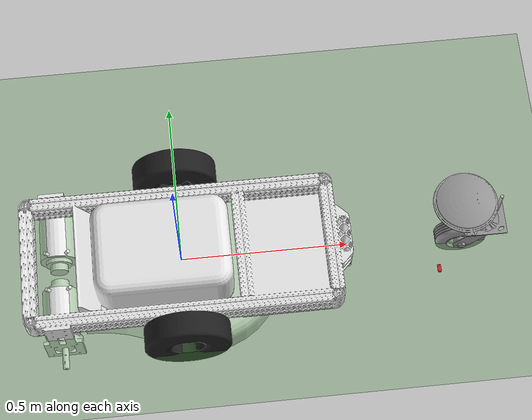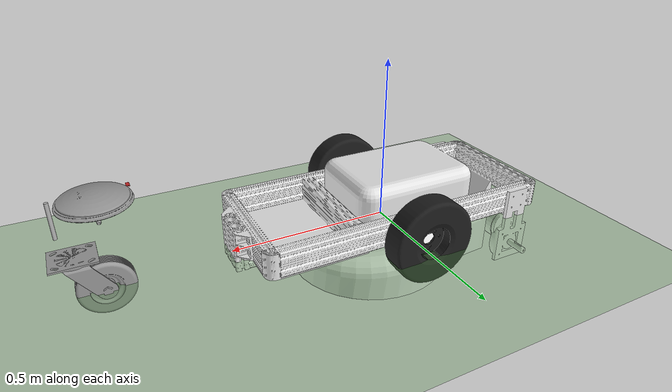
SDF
<?xml version="1.0" ?>
<sdf version="1.5">
  <world name="default">
    <!-- A global light source -->
    <include>
      <uri>model://sun</uri>
    </include>
    <!-- A ground plane -->
    <include>
      <uri>model://grass</uri>
    </include>

    <model name="my_grudsby">
      <include>
        <uri>model://grudsby_new</uri>
      </include>
      <pose frame=''>-0.0 -0.0 0.044505 0 -0 0</pose>
    </model>
    <gui fullscreen='0'>
      <camera name='user_camera'>
        <pose frame=''>20.839 -9.905 21.978 0 1.0618 -3.063</pose>
        <view_controller>orbit</view_controller>
        <projection_type>perspective</projection_type>
      </camera>
    </gui>
  </world>
</sdf>

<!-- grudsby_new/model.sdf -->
<sdf version='1.6'>
  <model name='grudsby_new'>

    <!-- ####################Grudsby Robot Links##########################  -->
    <link name='frame'>
      <pose frame=''>0 0 0 0 0 0</pose>
      <inertial>
        <mass>51</mass>
        <inertia>
          <ixx>1.11</ixx>
          <ixy>-0.05</ixy>
          <ixz>-0.13</ixz>
          <iyy>6.15</iyy>
          <iyz>0</iyz>
          <izz>6.79</izz>
        </inertia>
        <pose frame=''>0.255 0 0 0 -0 0</pose>
      </inertial>
      <gravity>1</gravity>
      <self_collide>0</self_collide>
      <kinematic>0</kinematic>
      <visual name='visual'>
        <pose frame=''>0 0 0 0 -0 0</pose>
        <geometry>
          <mesh>
            <uri>model://grudsby_new/meshes/grudsby_body.STL</uri>
          </mesh>
        </geometry>
        <material>
          <lighting>1</lighting>
          <script>
            <uri>file://media/materials/scripts/gazebo.material</uri>
            <name>Gazebo/White</name>
          </script>
          <shader type='vertex'>
            <normal_map>__default__</normal_map>
          </shader>
        </material>
        <cast_shadows>1</cast_shadows>
        <transparency>0</transparency>
      </visual>
      <collision name='collision'>
        <laser_retro>0</laser_retro>
        <max_contacts>10</max_contacts>
        <pose frame=''>0.165 0 0.007 0 -0 0</pose>
        <geometry>
          <box>
            <size>1.02 0.53 0.25</size>
          </box>
        </geometry>
        <surface>
          <friction>
            <ode>
              <mu>1</mu>
              <mu2>1</mu2>
              <fdir1>0 0 0</fdir1>
              <slip1>0</slip1>
              <slip2>0</slip2>
            </ode>
            <torsional>
              <coefficient>1</coefficient>
              <patch_radius>0</patch_radius>
              <surface_radius>0</surface_radius>
              <use_patch_radius>1</use_patch_radius>
              <ode>
                <slip>0</slip>
              </ode>
            </torsional>
          </friction>
          <bounce>
            <restitution_coefficient>0</restitution_coefficient>
            <threshold>1e+06</threshold>
          </bounce>
          <contact>
            <collide_without_contact>0</collide_without_contact>
            <collide_without_contact_bitmask>1</collide_without_contact_bitmask>
            <collide_bitmask>1</collide_bitmask>
            <ode>
              <soft_cfm>0</soft_cfm>
              <soft_erp>0.2</soft_erp>
              <kp>1e+13</kp>
              <kd>1</kd>
              <max_vel>0.01</max_vel>
              <min_depth>0</min_depth>
            </ode>
            <bullet>
              <split_impulse>1</split_impulse>
              <split_impulse_penetration_threshold>-0.01</split_impulse_penetration_threshold>
              <soft_cfm>0</soft_cfm>
              <soft_erp>0.2</soft_erp>
              <kp>1e+13</kp>
              <kd>1</kd>
            </bullet>
          </contact>
        </surface>
      </collision>
      <collision name='collision_1'>
        <laser_retro>0</laser_retro>
        <max_contacts>10</max_contacts>
        <pose frame=''>0.52 0 0.07 0 -0 0</pose>
        <geometry>
          <box>
            <size>0.2 0.53 0.07</size>
          </box>
        </geometry>
        <surface>
          <friction>
            <ode>
              <mu>1</mu>
              <mu2>1</mu2>
              <fdir1>0 0 0</fdir1>
              <slip1>0</slip1>
              <slip2>0</slip2>
            </ode>
            <torsional>
              <coefficient>1</coefficient>
              <patch_radius>0</patch_radius>
              <surface_radius>0</surface_radius>
              <use_patch_radius>1</use_patch_radius>
              <ode>
                <slip>0</slip>
              </ode>
            </torsional>
          </friction>
          <bounce>
            <restitution_coefficient>0</restitution_coefficient>
            <threshold>1e+06</threshold>
          </bounce>
          <contact>
            <collide_without_contact>0</collide_without_contact>
            <collide_without_contact_bitmask>1</collide_without_contact_bitmask>
            <collide_bitmask>1</collide_bitmask>
            <ode>
              <soft_cfm>0</soft_cfm>
              <soft_erp>0.2</soft_erp>
              <kp>1e+13</kp>
              <kd>1</kd>
              <max_vel>0.01</max_vel>
              <min_depth>0</min_depth>
            </ode>
            <bullet>
              <split_impulse>1</split_impulse>
              <split_impulse_penetration_threshold>-0.01</split_impulse_penetration_threshold>
              <soft_cfm>0</soft_cfm>
              <soft_erp>0.2</soft_erp>
              <kp>1e+13</kp>
              <kd>1</kd>
            </bullet>
          </contact>
        </surface>
      </collision>
    </link>
    <link name='right_wheel'>
      <pose frame=''>-0 -0.256272 0 0 -0 0</pose>
      <inertial>
        <mass>2</mass>
        <inertia>
          <ixx>0.1</ixx>
          <ixy>0</ixy>
          <ixz>0</ixz>
          <iyy>0.1</iyy>
          <iyz>0</iyz>
          <izz>0.1</izz>
        </inertia>
        <pose frame=''>0 0 0 0 -0 0</pose>
      </inertial>
      <gravity>1</gravity>
      <self_collide>0</self_collide>
      <kinematic>0</kinematic>
      <visual name='visual'>
        <pose frame=''>0 0 0 0 -0 0</pose>
        <geometry>
          <mesh>
            <uri>model://grudsby_new/meshes/wheel.STL</uri>
          </mesh>
        </geometry>
        <material>
          <lighting>1</lighting>
          <script>
            <uri>file://media/materials/scripts/gazebo.material</uri>
            <name>Gazebo/FlatBlack</name>
          </script>
          <shader type='vertex'>
            <normal_map>__default__</normal_map>
          </shader>
        </material>
        <cast_shadows>1</cast_shadows>
        <transparency>0</transparency>
      </visual>
      <collision name='collision'>
        <laser_retro>0</laser_retro>
        <max_contacts>10</max_contacts>
        <pose frame=''>0 0 0 1.5708 -0 0</pose>
        <geometry>
          <cylinder>
            <radius>0.128</radius>
            <length>0.08</length>
          </cylinder>
        </geometry>
        <surface>
          <friction>
            <ode>
              <!-- left/right friction coefficient -->
              <mu>10</mu>
              <!-- fowards/backwards friction coefficient -->
              <mu2>10</mu2>
              <fdir1>0 0 0</fdir1>
              <slip1>100</slip1>
              <slip2>0</slip2>
            </ode>
            <torsional>
              <coefficient>0</coefficient>
              <patch_radius>10</patch_radius>
              <surface_radius>0</surface_radius>
              <use_patch_radius>1</use_patch_radius>
              <ode>
                <slip>0</slip>
              </ode>
            </torsional>
          </friction>
          <bounce>
            <restitution_coefficient>0</restitution_coefficient>
            <threshold>1e+06</threshold>
          </bounce>
          <contact>
            <collide_without_contact>0</collide_without_contact>
            <collide_without_contact_bitmask>1</collide_without_contact_bitmask>
            <collide_bitmask>1</collide_bitmask>
            <ode>
              <soft_cfm>0</soft_cfm>
              <soft_erp>0.2</soft_erp>
              <kp>1e+13</kp>
              <kd>1</kd>
              <max_vel>0.01</max_vel>
              <min_depth>0</min_depth>
            </ode>
            <bullet>
              <split_impulse>1</split_impulse>
              <split_impulse_penetration_threshold>-0.01</split_impulse_penetration_threshold>
              <soft_cfm>0</soft_cfm>
              <soft_erp>0.2</soft_erp>
              <kp>1e+13</kp>
              <kd>1</kd>
            </bullet>
          </contact>
        </surface>
      </collision>
    </link>
    <link name='left_wheel'>
      <pose frame=''>0 0.254272 0 0 -0 0</pose>
      <inertial>
        <mass>2</mass>
        <inertia>
          <ixx>0.1</ixx>
          <ixy>0</ixy>
          <ixz>0</ixz>
          <iyy>0.1</iyy>
          <iyz>0</iyz>
          <izz>0.1</izz>
        </inertia>
        <pose frame=''>0 0 0 0 -0 0</pose>
      </inertial>
      <gravity>1</gravity>
      <self_collide>0</self_collide>
      <kinematic>0</kinematic>
      <visual name='visual'>
        <pose frame=''>0 0 0 0 -0 0</pose>
        <geometry>
          <mesh>
            <uri>model://grudsby_new/meshes/wheel.STL</uri>
          </mesh>
        </geometry>
        <material>
          <lighting>1</lighting>
          <script>
            <uri>file://media/materials/scripts/gazebo.material</uri>
            <name>Gazebo/FlatBlack</name>
          </script>
          <shader type='vertex'>
            <normal_map>__default__</normal_map>
          </shader>
        </material>
        <cast_shadows>1</cast_shadows>
        <transparency>0</transparency>
      </visual>
      <collision name='collision'>
        <laser_retro>0</laser_retro>
        <max_contacts>10</max_contacts>
        <pose frame=''>0 0 0 1.5708 -0 0</pose>
        <geometry>
          <cylinder>
            <radius>0.128</radius>
            <length>0.08</length>
          </cylinder>
        </geometry>
        <surface>
          <friction>
            <ode>
              <!-- left/right friction coefficient -->
              <mu>10</mu>
              <!-- fowards/backwards friction coefficient -->
              <mu2>10</mu2>
              <fdir1>0 0 0</fdir1>
              <slip1>0</slip1>
              <slip2>0</slip2>
            </ode>
            <torsional>
              <coefficient>0</coefficient>
              <patch_radius>10</patch_radius>
              <surface_radius>0</surface_radius>
              <use_patch_radius>1</use_patch_radius>
              <ode>
                <slip>0</slip>
              </ode>
            </torsional>
          </friction>
          <bounce>
            <restitution_coefficient>0</restitution_coefficient>
            <threshold>1e+06</threshold>
          </bounce>
          <contact>
            <collide_without_contact>0</collide_without_contact>
            <collide_without_contact_bitmask>1</collide_without_contact_bitmask>
            <collide_bitmask>1</collide_bitmask>
            <ode>
              <soft_cfm>0</soft_cfm>
              <soft_erp>0.2</soft_erp>
              <kp>1e+13</kp>
              <kd>1</kd>
              <max_vel>0.01</max_vel>
              <min_depth>0</min_depth>
            </ode>
            <bullet>
              <split_impulse>1</split_impulse>
              <split_impulse_penetration_threshold>-0.01</split_impulse_penetration_threshold>
              <soft_cfm>0</soft_cfm>
              <soft_erp>0.2</soft_erp>
              <kp>1e+13</kp>
              <kd>1</kd>
            </bullet>
          </contact>
        </surface>
      </collision>
    </link>

    <!-- ######################Imported Models#####################  -->
    <include>
      <uri>model://grudsby_caster</uri>
      <pose frame=''>0.885 0 0.027 0 0 0</pose>
    </include>

    <include>
      <uri>model://grudsby_imu</uri>
      <pose frame=''>0.73393 -0.1723 0.148415 0 0 0</pose>
    </include>

    <include>
      <uri>model://grudsby_gps</uri>
      <pose frame=''>0.82963 0 .157 -0.25 0 0</pose>
    </include>

    <include>
      <uri>model://grudsby_laser</uri>
      <pose frame=''>0.93209511 0 0.1717 0 0 0</pose>
    </include>

    <!-- ##########################Joints##########################  -->

    <joint name="laser_joint" type="fixed">
      <child>grudsby_laser::base_link_sim</child>
      <parent>frame</parent>
      <pose frame=''>0 0 0 0 -0 0</pose>
      <axis>
        <xyz>0 0 1</xyz>
      </axis>
    </joint>

    <joint name='base_caster_joint' type='fixed'>
      <parent>frame</parent>
      <child>grudsby_caster::base</child>
      <pose frame=''>0 0 0 0 -0 0</pose>
      <axis>
        <xyz>0 0 1</xyz>
      </axis>
    </joint>

     <joint name='base_imu_joint' type='fixed'>
      <parent>frame</parent>
      <child>grudsby_imu::base_link_sim</child>
      <pose frame=''>0 0 0 0 -0 1.570</pose>
      <axis>
        <xyz>0 0 1</xyz>
      </axis>
    </joint>

    <joint name='base_gps_joint' type='fixed'>
      <parent>frame</parent>
      <child>grudsby_gps::base_link_sim</child>
      <pose frame=''>0 0 0 0 -0 0</pose>
      <axis>
        <xyz>0 0 1</xyz>
      </axis>
    </joint>.

    <joint name='right_axle_joint' type='revolute'>
      <parent>frame</parent>
      <child>right_wheel</child>
      <pose frame=''>0 0 0 0 -0 0</pose>
      <axis>
        <xyz>0 1 0</xyz>
        <use_parent_model_frame>0</use_parent_model_frame>
        <limit>
          <effort>-1</effort>
          <velocity>-1</velocity>
        </limit>
        <dynamics>
          <spring_reference>0</spring_reference>
          <spring_stiffness>0</spring_stiffness>
          <damping>0</damping>
          <friction>0</friction>
        </dynamics>
      </axis>
      <physics>
        <ode>
          <limit>
            <cfm>0</cfm>
            <erp>0.2</erp>
          </limit>
          <suspension>
            <cfm>0</cfm>
            <erp>0.2</erp>
          </suspension>
        </ode>
      </physics>
    </joint>

    <joint name='left_axle_joint' type='revolute'>
      <parent>frame</parent>
      <child>left_wheel</child>
      <pose frame=''>0 0 0 0 -0 0</pose>
      <axis>
        <xyz>0 1 0</xyz>
        <use_parent_model_frame>0</use_parent_model_frame>
        <limit>
          <effort>-1</effort>
          <velocity>-1</velocity>
        </limit>
        <dynamics>
          <spring_reference>0</spring_reference>
          <spring_stiffness>0</spring_stiffness>
          <damping>0</damping>
          <friction>0</friction>
        </dynamics>
      </axis>
      <physics>
        <ode>
          <limit>
            <cfm>0</cfm>
            <erp>0.2</erp>
          </limit>
          <suspension>
            <cfm>0</cfm>
            <erp>0.2</erp>
          </suspension>
        </ode>
      </physics>
    </joint>

    <!-- ########################Plugins#####################  -->
    <plugin name="differential_drive_controller" filename="libgazebo_ros_diff_drive.so">
      <alwaysOn>true</alwaysOn>
      <updateRate>50</updateRate>
      <robotNamespace>/</robotNamespace>
      <leftJoint>left_axle_joint</leftJoint>
      <rightJoint>right_axle_joint</rightJoint>
      <wheelSeparation>0.508</wheelSeparation>
      <wheelDiameter>0.254</wheelDiameter>
      <wheelAcceleration>10</wheelAcceleration>
      <publishTf>1</publishTf>
      <wheelTorque>10</wheelTorque>
      <commandTopic>cmd_vel</commandTopic>
      <odometryTopic>odom_sim</odometryTopic>
      <odometryFrame>odom_sim</odometryFrame>
      <robotBaseFrame>base_link_sim</robotBaseFrame>
      <legacyMode>false</legacyMode>
      <rosDebugLevel>na</rosDebugLevel>
      <publishWheelTF>false</publishWheelTF>
      <publishWheelJointState>false</publishWheelJointState>
    </plugin>

    <static>0</static>
    <allow_auto_disable>1</allow_auto_disable>

  </model>
</sdf>

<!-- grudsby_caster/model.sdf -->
<sdf version='1.6'>
  <model name='grudsby_caster'>
    <link name='base'>
      <pose frame=''>0.021189 0.000113 0.035019 0 -0 0</pose>
      <inertial>
        <mass>.05</mass>
        <inertia>
          <ixx>0</ixx>
          <ixy>0</ixy>
          <ixz>0</ixz>
          <iyy>0</iyy>
          <iyz>0</iyz>
          <izz>0</izz>
        </inertia>
        <pose frame=''>0 0 0 0 -0 0</pose>
      </inertial>
      <gravity>1</gravity>
      <self_collide>0</self_collide>
      <kinematic>0</kinematic>
      <visual name='visual'>
        <pose frame=''>0 0 0 3.14157 -0 0</pose>
        <geometry>
          <mesh>
            <uri>model://grudsby_caster/meshes/caster_base.STL</uri>
          </mesh>
        </geometry>
        <material>
          <lighting>1</lighting>
          <script>
            <uri>file://media/materials/scripts/gazebo.material</uri>
            <name>Gazebo/Grey</name>
          </script>
          <ambient>0.3 0.3 0.3 1</ambient>
          <diffuse>0.7 0.7 0.7 1</diffuse>
          <specular>0.01 0.01 0.01 1</specular>
          <emissive>0 0 0 1</emissive>
          <shader type='vertex'>
            <normal_map>__default__</normal_map>
          </shader>
        </material>
        <cast_shadows>1</cast_shadows>
        <transparency>0</transparency>
      </visual>
      <collision name='collision'>
        <laser_retro>0</laser_retro>
        <max_contacts>10</max_contacts>
        <pose frame=''>0 0 0 3.14157 -0 0</pose>
        <geometry>
          <mesh>
            <uri>model://grudsby_caster/meshes/caster_base.STL</uri>
          </mesh>
        </geometry>
        <surface>
          <friction>
            <ode>
              <mu>1</mu>
              <mu2>1</mu2>
              <fdir1>0 0 0</fdir1>
              <slip1>0</slip1>
              <slip2>0</slip2>
            </ode>
            <torsional>
              <coefficient>1</coefficient>
              <patch_radius>0</patch_radius>
              <surface_radius>0</surface_radius>
              <use_patch_radius>1</use_patch_radius>
              <ode>
                <slip>0</slip>
              </ode>
            </torsional>
          </friction>
          <bounce>
            <restitution_coefficient>0</restitution_coefficient>
            <threshold>1e+06</threshold>
          </bounce>
          <contact>
            <collide_without_contact>0</collide_without_contact>
            <collide_without_contact_bitmask>1</collide_without_contact_bitmask>
            <collide_bitmask>1</collide_bitmask>
            <ode>
              <soft_cfm>0</soft_cfm>
              <soft_erp>0.2</soft_erp>
              <kp>1e+13</kp>
              <kd>1</kd>
              <max_vel>0.01</max_vel>
              <min_depth>0</min_depth>
            </ode>
            <bullet>
              <split_impulse>1</split_impulse>
              <split_impulse_penetration_threshold>-0.01</split_impulse_penetration_threshold>
              <soft_cfm>0</soft_cfm>
              <soft_erp>0.2</soft_erp>
              <kp>1e+13</kp>
              <kd>1</kd>
            </bullet>
          </contact>
        </surface>
      </collision>
    </link>
    <link name='frame'>
      <pose frame=''>0.021189 0.000112 0.035019 0 -0 0</pose>
      <inertial>
        <mass>0.005</mass>
        <inertia>
          <ixx>0</ixx>
          <ixy>0</ixy>
          <ixz>0</ixz>
          <iyy>0</iyy>
          <iyz>0</iyz>
          <izz>0</izz>
        </inertia>
        <pose frame=''>0 0 0 0 -0 0</pose>
      </inertial>
      <gravity>1</gravity>
      <self_collide>0</self_collide>
      <kinematic>0</kinematic>
      <visual name='visual'>
        <pose frame=''>0 0 0 3.14157 -0 0</pose>
        <geometry>
          <mesh>
            <uri>model://grudsby_caster/meshes/caster_wheel_mount.STL</uri>
          </mesh>
        </geometry>
        <material>
          <lighting>1</lighting>
          <script>
            <uri>file://media/materials/scripts/gazebo.material</uri>
            <name>Gazebo/Grey</name>
          </script>
          <ambient>0.3 0.3 0.3 1</ambient>
          <diffuse>0.7 0.7 0.7 1</diffuse>
          <specular>0.01 0.01 0.01 1</specular>
          <emissive>0 0 0 1</emissive>
          <shader type='vertex'>
            <normal_map>__default__</normal_map>
          </shader>
        </material>
        <cast_shadows>1</cast_shadows>
        <transparency>0</transparency>
      </visual>
      <collision name='collision'>
        <laser_retro>0</laser_retro>
        <max_contacts>10</max_contacts>
        <pose frame=''>0 0 0 3.14157 -0 0</pose>
        <geometry>
          <mesh>
            <uri>model://grudsby_caster/meshes/caster_wheel_mount.STL</uri>
          </mesh>
        </geometry>
        <surface>
          <friction>
            <ode>
              <mu>1</mu>
              <mu2>1</mu2>
              <fdir1>.2 .2 .2</fdir1>
              <slip1>0</slip1>
              <slip2>0</slip2>
            </ode>
            <torsional>
              <coefficient>1</coefficient>
              <patch_radius>0</patch_radius>
              <surface_radius>0</surface_radius>
              <use_patch_radius>1</use_patch_radius>
              <ode>
                <slip>0</slip>
              </ode>
            </torsional>
          </friction>
          <bounce>
            <restitution_coefficient>0</restitution_coefficient>
            <threshold>1e+06</threshold>
          </bounce>
          <contact>
            <collide_without_contact>0</collide_without_contact>
            <collide_without_contact_bitmask>1</collide_without_contact_bitmask>
            <collide_bitmask>1</collide_bitmask>
            <ode>
              <soft_cfm>0</soft_cfm>
              <soft_erp>0.2</soft_erp>
              <kp>1e+13</kp>
              <kd>1</kd>
              <max_vel>0.01</max_vel>
              <min_depth>0</min_depth>
            </ode>
            <bullet>
              <split_impulse>1</split_impulse>
              <split_impulse_penetration_threshold>-0.01</split_impulse_penetration_threshold>
              <soft_cfm>0</soft_cfm>
              <soft_erp>0.2</soft_erp>
              <kp>1e+13</kp>
              <kd>1</kd>
            </bullet>
          </contact>
        </surface>
      </collision>
    </link>
    <link name='wheel'>
      <pose frame=''>-0.042377 0.000111 -0.070039 0 -0 0</pose>
      <inertial>
        <mass>0.05</mass>
        <inertia>
          <ixx>0.01</ixx>
          <ixy>0.01</ixy>
          <ixz>0.01</ixz>
          <iyy>0.01</iyy>
          <iyz>0.01</iyz>
          <izz>0.01</izz>
        </inertia>
        <pose frame=''>0 0 0 0 -0 0</pose>
      </inertial>
      <gravity>1</gravity>
      <self_collide>0</self_collide>
      <kinematic>0</kinematic>
      <visual name='visual'>
        <pose frame=''>0 0 0 0 -0 0</pose>
        <geometry>
          <mesh>
            <uri>model://grudsby_caster/meshes/caster_wheel.STL</uri>
          </mesh>
        </geometry>
        <material>
          <lighting>1</lighting>
          <script>
            <uri>file://media/materials/scripts/gazebo.material</uri>
            <name>Gazebo/Grey</name>
          </script>
          <ambient>0.3 0.3 0.3 1</ambient>
          <diffuse>0.7 0.7 0.7 1</diffuse>
          <specular>0.01 0.01 0.01 1</specular>
          <emissive>0 0 0 1</emissive>
          <shader type='vertex'>
            <normal_map>__default__</normal_map>
          </shader>
        </material>
        <cast_shadows>1</cast_shadows>
        <transparency>0</transparency>
      </visual>
      <collision name='collision'>
        <laser_retro>0</laser_retro>
        <max_contacts>10</max_contacts>
        <pose frame=''>0 0 0 1.5707 -0 0</pose>
        <geometry>
          <cylinder>
            <radius>0.077</radius>
            <length>0.055</length>
          </cylinder>
        </geometry>
        <surface>
          <friction>
            <ode>
              <mu>0.50</mu>
              <mu2>0.5</mu2>
              <fdir1>0.3 0.3 0.3</fdir1>
              <slip1>0.2</slip1>
              <slip2>0.2</slip2>
            </ode>
            <torsional>
              <coefficient>0</coefficient>
              <patch_radius>0</patch_radius>
              <surface_radius>0</surface_radius>
              <use_patch_radius>1</use_patch_radius>
              <ode>
                <slip>0</slip>
              </ode>
            </torsional>
          </friction>
          <bounce>
            <restitution_coefficient>0</restitution_coefficient>
            <threshold>1e+06</threshold>
          </bounce>
          <contact>
            <collide_without_contact>0</collide_without_contact>
            <collide_without_contact_bitmask>1</collide_without_contact_bitmask>
            <collide_bitmask>1</collide_bitmask>
            <ode>
              <soft_cfm>0</soft_cfm>
              <soft_erp>0.2</soft_erp>
              <kp>1e+13</kp>
              <kd>1</kd>
              <max_vel>0.01</max_vel>
              <min_depth>0</min_depth>
            </ode>
            <bullet>
              <split_impulse>1</split_impulse>
              <split_impulse_penetration_threshold>-0.01</split_impulse_penetration_threshold>
              <soft_cfm>0</soft_cfm>
              <soft_erp>0.2</soft_erp>
              <kp>1e+13</kp>
              <kd>1</kd>
            </bullet>
          </contact>
        </surface>
      </collision>
    </link>
    <joint name='base_frame_joint' type='revolute'>
      <parent>base</parent>
      <child>frame</child>
      <pose frame=''>0 0 0 0 -0 0</pose>
      <axis>
        <xyz>0 0 1</xyz>
        <use_parent_model_frame>0</use_parent_model_frame>
        <limit>
          <effort>-1</effort>
          <velocity>-1</velocity>
        </limit>
        <dynamics>
          <spring_reference>0</spring_reference>
          <spring_stiffness>.7</spring_stiffness>
          <damping>0</damping>
          <friction>0</friction>
        </dynamics>
      </axis>
      <physics>
        <ode>
          <limit>
            <cfm>0</cfm>
            <erp>0</erp>
          </limit>
          <suspension>
            <cfm>0</cfm>
            <erp>0</erp>
          </suspension>
        </ode>
      </physics>
    </joint>
    <joint name='frame_wheel_joint' type='revolute'>
      <parent>frame</parent>
      <child>wheel</child>
      <pose frame=''>0 0 0 0 -0 0</pose>
      <axis>
        <xyz>0 1 0</xyz>
        <use_parent_model_frame>0</use_parent_model_frame>
        <limit>
          <effort>-1</effort>
          <velocity>-1</velocity>
        </limit>
        <dynamics>
          <spring_reference>0</spring_reference>
          <spring_stiffness>0</spring_stiffness>
          <damping>0</damping>
          <friction>0</friction>
        </dynamics>
      </axis>
      <physics>
        <ode>
          <limit>
            <cfm>0</cfm>
            <erp>0</erp>
          </limit>
          <suspension>
            <cfm>0</cfm>
            <erp>0</erp>
          </suspension>
        </ode>
      </physics>
    </joint>
    <static>0</static>
    <allow_auto_disable>1</allow_auto_disable>
  </model>
</sdf>

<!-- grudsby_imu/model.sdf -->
<sdf version='1.6'>
  <model name='grudsby_imu'>
    <link name='base_link_sim'>
      <pose frame=''>0 0 0 0 0 0</pose>

      <inertial>
        <mass>0.000001</mass>
        <inertia>
          <ixx>0</ixx>
          <ixy>0</ixy>
          <ixz>0</ixz>
          <iyy>0</iyy>
          <iyz>0</iyz>
          <izz>0</izz>
        </inertia>
        <pose frame=''>0 0 0 0 -0 0</pose>
      </inertial>

      <visual name='visual'>
        <pose frame=''>0 0 0 0 -0 0</pose>
        <geometry>
          <mesh>
            <uri>model://grudsby_imu/meshes/grudsby_imu.STL</uri>
          </mesh>
        </geometry>
        <material>
          <lighting>1</lighting>
          <script>
            <uri>file://media/materials/scripts/gazebo.material</uri>
            <name>Gazebo/Red</name>
          </script>
          <shader type='vertex'>
            <normal_map>__default__</normal_map>
          </shader>
        </material>
        <cast_shadows>1</cast_shadows>
        <transparency>0</transparency>
      </visual>

      <collision name='collision'>
        <max_contacts>10</max_contacts>
        <pose frame=''>0 0 0 0 -0 0</pose>
        <geometry>
          <mesh>
            <uri>model://grudsby_imu/meshes/grudsby_imu.STL</uri>
          </mesh>
        </geometry>
      </collision>
    </link>

      <plugin name="imu_plugin" filename="libhector_gazebo_ros_imu.so">
	      <alwaysOn>true</alwaysOn>
	      <bodyName>base_link_sim</bodyName>
	      <topicName>imu/data_sim</topicName>
	      <serviceName>imu_service</serviceName>
	      <gaussianNoise>0.0</gaussianNoise>
	      <updateRate>50.0</updateRate>
      </plugin>
      <plugin name="mag_plugin" filename="libhector_gazebo_ros_magnetic.so">
              <alwaysOn>true</alwaysOn>
              <bodyName>base_link_sim</bodyName>
              <topicName>mag</topicName>
              <serviceName>mag_service</serviceName>
              <declination>-28.6479</declination>
              <updateRate>50.0</updateRate>
      </plugin>

    <static>0</static>
    <allow_auto_disable>1</allow_auto_disable>
  </model>
</sdf>

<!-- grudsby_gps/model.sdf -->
<sdf version='1.6'>
  <model name='grudsby_gps'>
    <link name='base_link_sim'>
      <pose frame=''>0 0 0 0 0 0</pose>

      <inertial>
        <mass>0.002</mass>
        <inertia>
          <ixx>0</ixx>
          <ixy>0</ixy>
          <ixz>-0</ixz>
          <iyy>0</iyy>
          <iyz>0</iyz>
          <izz>0</izz>
        </inertia>
        <pose frame=''>0 0 0 0 -0 0</pose>
      </inertial>

      <visual name='visual'>
        <pose frame=''>0 0 0 0 -0 1.5707</pose>
        <geometry>
          <mesh>
            <uri>model://grudsby_gps/meshes/grudsby_gps.STL</uri>
          </mesh>
        </geometry>
        <material>
          <lighting>1</lighting>
          <script>
            <uri>file://media/materials/scripts/gazebo.material</uri>
            <name>Gazebo/Grey</name>
          </script>
          <shader type='vertex'>
            <normal_map>__default__</normal_map>
          </shader>
        </material>
        <cast_shadows>1</cast_shadows>
        <transparency>0</transparency>
      </visual>

      <collision name='collision'>
        <max_contacts>10</max_contacts>
        <pose frame=''>0 0 0 0 -0 1.5707</pose>
        <geometry>
          <mesh>
            <uri>model://grudsby_gps/meshes/grudsby_gps.STL</uri>
          </mesh>
        </geometry>
      </collision>
    </link>

    <plugin name="gps_plugin" filename="libhector_gazebo_ros_gps.so">
      <alwayson>true</alwayson>
      <updateRate>5.0</updateRate>
      <bodyName>base_link_sim</bodyName>
      <topicName>/fix_sim</topicName>
      <velocityTopicName>/fix_velocity</velocityTopicName>
      <drift>0.316227766 0.316227766 0.5</drift>
      <gaussianNoise>0.01 0.01 0.01</gaussianNoise>
      <velocityDrift>0 0 0</velocityDrift>
      <velocityGaussianNoise>0.001 0.001 0.001</velocityGaussianNoise>
      <status>1</status>
      <referenceLatitude>40.444549</referenceLatitude>
      <referenceLongitude>-79.940793</referenceLongitude>
    </plugin>

    <static>0</static>
    <allow_auto_disable>1</allow_auto_disable>
  </model>
</sdf>

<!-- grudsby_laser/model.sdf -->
<sdf version='1.6'>
  <model name='grudsby_laser'>
    <link name='base_link_sim'>
      <pose frame=''>0 0 0 0 0 0</pose>

      <inertial>
      <mass>1.2</mass>
        <inertia>
          <ixx>0.001087473</ixx>
          <iyy>0.001087473</iyy>
          <izz>0.001092437</izz>
          <ixy>0</ixy>
          <ixz>0</ixz>
          <iyz>0</iyz>
        </inertia>
        <pose frame=''>0 0 0 0 -0 0</pose>
      </inertial>

      <visual name="visual">
        <geometry>
          <cylinder>
            <radius>.005</radius>
            <length>.10</length>
          </cylinder>
        </geometry>
      </visual>

      <collision name="collision">
        <geometry>
          <cylinder>
            <!-- Radius and length provided by Velodyne -->
            <radius>.005</radius>
            <length>.10</length>
          </cylinder>
        </geometry>
      </collision>

      <sensor type="gpu_ray" name="laser_sensor">
        <pose>0 0 0 0 0 0</pose>
        <update_rate>10</update_rate>
        <ray>
          <scan>
            <horizontal>
              <samples>300</samples>
              <resolution>1</resolution>
              <min_angle>-0.8</min_angle>
              <max_angle>0.8</max_angle>
            </horizontal>
          </scan>
          <range>
            <min>0.10</min>
            <max>10.0</max>
            <resolution>0.01</resolution>
          </range>
          <noise>
            <type>gaussian</type>
            <mean>0.0</mean>
            <stddev>0.01</stddev>
          </noise>
        </ray>

        <plugin name="laser_plugin" filename="libgazebo_ros_gpu_laser.so">
          <alwaysOn>true</alwaysOn>
          <bodyName>base_link_sim</bodyName>
          <topicName>laser/scan_sim</topicName>
          <serviceName>laser_service</serviceName>
        </plugin>
        <visualize>true</visualize>
      </sensor>

      <static>0</static>
      <allow_auto_disable>1</allow_auto_disable>
    </link>
  </model>
</sdf>

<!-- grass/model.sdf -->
<sdf version="1.5">
  <model name="grass">
    <static>true</static>
    <link name="link">
      <collision name="collision">
        <geometry>
          <plane>
            <normal>0 0 1</normal>
            <size>100 100</size>
          </plane>
        </geometry>
        <surface>
          <friction>
            <ode>
              <mu>100</mu>
              <mu2>50</mu2>
            </ode>
          </friction>
        </surface>
      </collision>
      <visual name="visual">
        <cast_shadows>false</cast_shadows>
        <geometry>
          <plane>
            <normal>0 0 1</normal>
            <size>100 100</size>
          </plane>
        </geometry>
        <material>
          <script>
            <uri>file://media/materials/scripts/gazebo.material</uri>
            <name>Gazebo/Grass</name>
          </script>
        </material>
      </visual>
    </link>
  </model>
</sdf>
